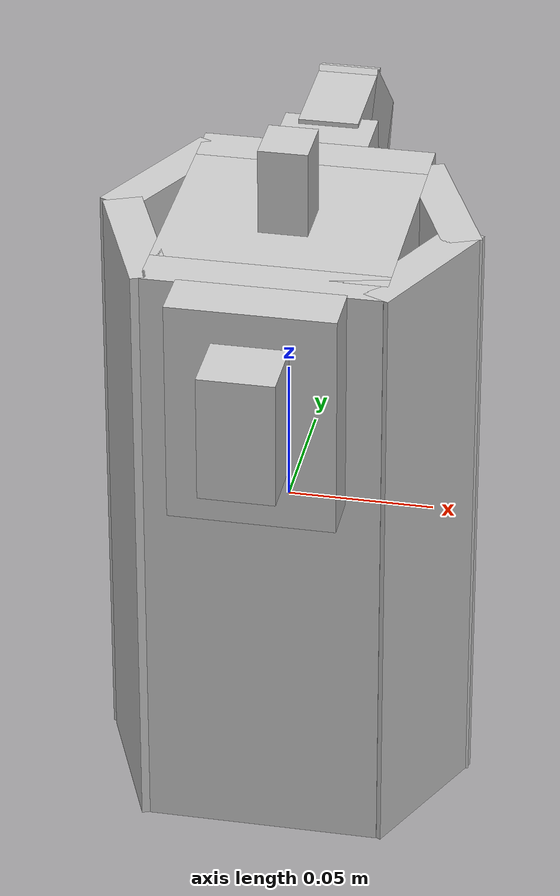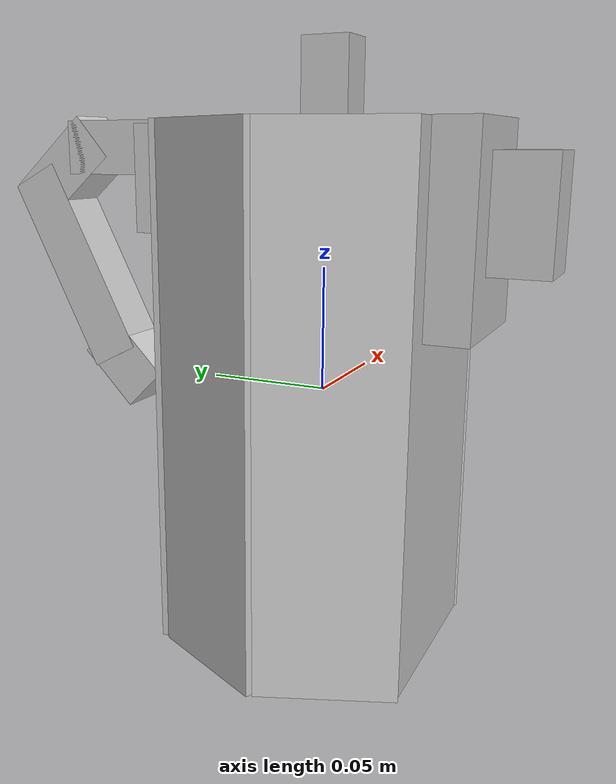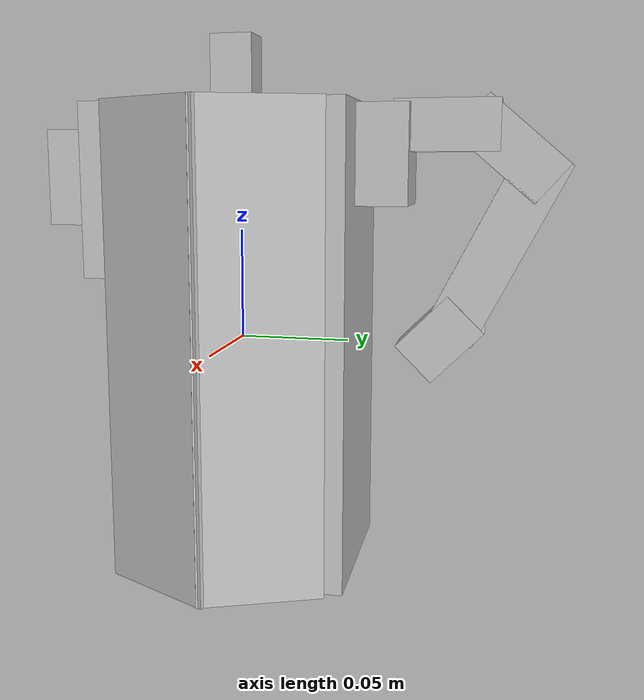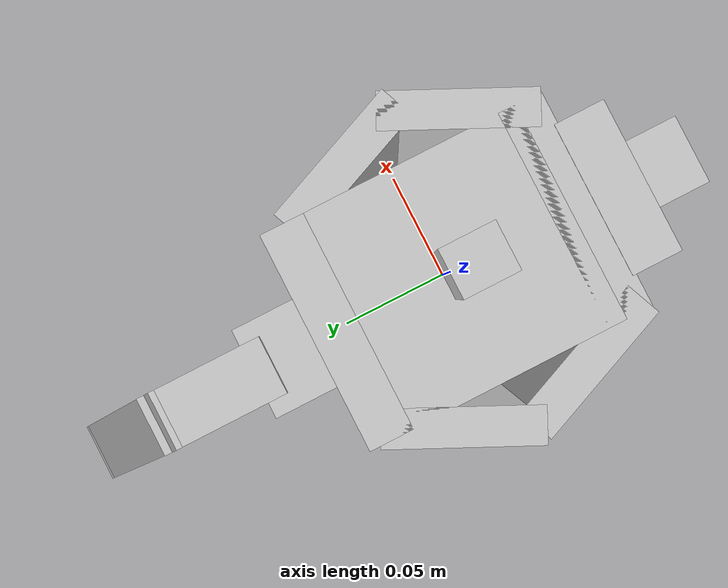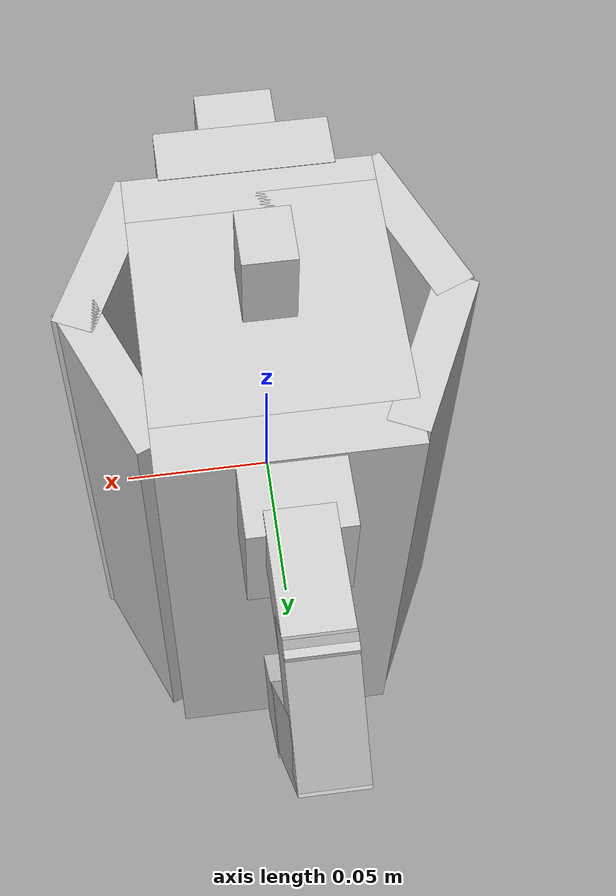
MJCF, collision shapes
<mujoco model="moka_pot_body">
  <asset>
    <texture file="dark_blue_wall.png" name="tex-moka_pot_body" type="2d" />
    <material name="moka_pot_body" reflectance="0.5" texrepeat="1 1" texture="tex-moka_pot_body" texuniform="false" />
    <mesh file="visual/moka_pot_body_vis.msh" name="moka_pot_body_vis" scale="0.04 0.04 0.04" />
    <texture file="rubber_black.png" name="tex-moka_pot_handle" type="2d"/>
    <material name="moka_pot_handle" reflectance="0.5" texrepeat="1 1" texture="tex-moka_pot_handle" texuniform="false"/>
    <mesh file="visual/moka_pot_handle_vis.msh" name="moka_pot_handle_vis" scale="0.04 0.04 0.04"/>
  </asset>

  <worldbody>
    <body>
      <body name="object">

        <!-- 视觉部分 -->
        <geom type="mesh" mesh="moka_pot_body_vis" material="moka_pot_body"
              conaffinity="0" contype="0" group="1"
              solimp="0.998 0.998 0.001" solref="0.001 1"
              density="100" friction="0.95 0.3 0.1" />
        <geom type="mesh" mesh="moka_pot_handle_vis" material="moka_pot_handle"
              conaffinity="0" contype="0" group="1"
              solimp="0.998 0.998 0.001" solref="0.001 1"
              density="100" friction="0.95 0.3 0.1" />

        <!-- 碰撞体部分（已放大 1.6 倍） -->
        <geom type="box" pos="-0.00000 -0.00000 0.00070" size="0.04000 0.04000 0.10648" group="0" rgba="0.8 0.8 0.8 0.3"
              solimp="0.998 0.998 0.001" solref="0.001 1" density="100" friction="0.95 0.3 0.1" />
        <geom type="box" pos="0.00000 -0.04150 0.00070" quat="0.00000 0.70711 0.70711 0.00000"
              size="0.00808 0.04000 0.10648" group="0" rgba="0.8 0.8 0.8 0.3"
              solimp="0.998 0.998 0.001" solref="0.001 1" density="100" friction="0.95 0.3 0.1" />
        <geom type="box" pos="0.00000 0.04728 0.00070" quat="0.00000 0.70711 0.70711 0.00000"
              size="0.00808 0.04000 0.10648" group="0" rgba="0.8 0.8 0.8 0.3"
              solimp="0.998 0.998 0.001" solref="0.001 1" density="100" friction="0.95 0.3 0.1" />
        <geom type="box" pos="0.04827 0.02006 0.00070" quat="0.00000 -0.19372 0.98106 0.00000"
              size="0.00672 0.02750 0.10648" group="0" rgba="0.8 0.8 0.8 0.3"
              solimp="0.998 0.998 0.001" solref="0.001 1" density="100" friction="0.95 0.3 0.1" />
        <geom type="box" pos="-0.04694 -0.02245 0.00070" quat="-0.00000 -0.98106 -0.19372 -0.00000"
              size="0.00672 0.02750 0.10648" group="0" rgba="0.8 0.8 0.8 0.3"
              solimp="0.998 0.998 0.001" solref="0.001 1" density="100" friction="0.95 0.3 0.1" />
        <geom type="box" pos="0.04739 -0.02245 0.00070" quat="0.00000 -0.97505 0.22201 0.00000"
              size="0.00672 0.02750 0.10648" group="0" rgba="0.8 0.8 0.8 0.3"
              solimp="0.998 0.998 0.001" solref="0.001 1" density="100" friction="0.95 0.3 0.1" />
        <geom type="box" pos="-0.04694 0.02414 0.00070" quat="0.00000 -0.97505 0.22201 0.00000"
              size="0.00672 0.02750 0.10648" group="0" rgba="0.8 0.8 0.8 0.3"
              solimp="0.998 0.998 0.001" solref="0.001 1" density="100" friction="0.95 0.3 0.1" />
        <geom type="box" pos="0.00000 -0.05746 0.06816" quat="0.00000 0.70711 0.70711 0.00000"
              size="0.00923 0.02819 0.03922" group="0" rgba="0.8 0.8 0.8 0.3"
              solimp="0.998 0.998 0.001" solref="0.001 1" density="100" friction="0.95 0.3 0.1" />
        <geom type="box" pos="0.00000 -0.07856 0.07390" quat="0.00000 0.70711 0.70711 0.00000"
              size="0.01154 0.01283 0.02198" group="0" rgba="0.8 0.8 0.8 0.3"
              solimp="0.998 0.998 0.001" solref="0.001 1" density="100" friction="0.95 0.3 0.1" />
        <geom type="box" pos="-0.00000 0.06654 0.08398" quat="0.00000 0.70711 0.70711 0.00000"
              size="0.01154 0.01634 0.02198" group="0" rgba="0.8 0.8 0.8 0.3"
              solimp="0.998 0.998 0.001" solref="0.001 1" density="100" friction="0.95 0.3 0.1" />
        <geom type="box" pos="0.00000 0.09326 0.09643" quat="0.00000 -0.00000 0.70711 -0.70711"
              size="0.01048 0.01115 0.02254" group="0" rgba="0.8 0.8 0.8 0.3"
              solimp="0.998 0.998 0.001" solref="0.001 1" density="100" friction="0.95 0.3 0.1" />
        <geom type="box" pos="-0.00000 0.12073 0.08626" quat="0.00000 0.00000 -0.90919 -0.41638"
              size="0.01048 0.01115 0.02254" group="0" rgba="0.8 0.8 0.8 0.3"
              solimp="0.998 0.998 0.001" solref="0.001 1" density="100" friction="0.95 0.3 0.1" />
        <geom type="box" pos="-0.00000 0.11595 0.04518" quat="0.00000 -0.00000 -0.23224 -0.97266"
              size="0.01048 0.01136 0.04400" group="0" rgba="0.8 0.8 0.8 0.3"
              solimp="0.998 0.998 0.001" solref="0.001 1" density="100" friction="0.95 0.3 0.1" />
        <geom type="box" pos="0.00021 0.09221 0.00368" quat="0.00000 -0.00000 0.92514 -0.37963"
              size="0.01048 0.01131 0.01611" group="0" rgba="0.8 0.8 0.8 0.3"
              solimp="0.998 0.998 0.001" solref="0.001 1" density="100" friction="0.95 0.3 0.1" />
        <geom type="box" pos="-0.00000 -0.00214 0.11886" quat="0.00000 0.00000 1.00000 0.00000"
              size="0.00838 0.00957 0.01824" group="0" rgba="0.8 0.8 0.8 0.3"
              solimp="0.998 0.998 0.001" solref="0.001 1" density="100" friction="0.95 0.3 0.1" />

      </body>

      <!-- 参考 site（不参与物理） -->
      <site rgba="0 0 0 0" size="0.005" pos="0 0 -0.06" name="bottom_site" />
      <site rgba="0 0 0 0" size="0.005" pos="0 0 0.04" name="top_site" />
      <site rgba="0 0 0 0" size="0.005" pos="0.025 0.025 0" name="horizontal_radius_site" />

    </body>
  </worldbody>
</mujoco>
